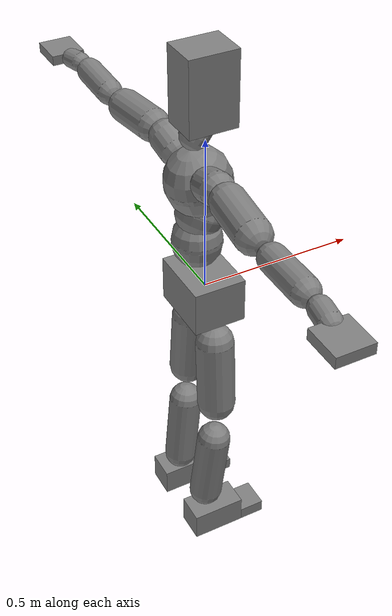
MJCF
<mujoco model="smpl">
  <compiler angle="radian" />
  <default>
    <motor ctrlrange="-1 1" ctrllimited="true" />
    <geom condim="1" friction="1.0 0.05 0.05" solimp=".9 .99 .003" solref=".015 1" />
    <joint limited="true" solimplimit="0 .99 .01" />
    <site size=".04" group="3" />
    <default class="force-torque">
      <site type="box" size=".01 .01 .02" rgba="1 0 0 1" />
    </default>
    <default class="touch">
      <site type="capsule" rgba="0 0 1 .3" />
    </default>
  </default>
  <worldbody>
    <body name="Pelvis" pos="0 0 0">
      <freejoint name="Pelvis" />
      <body name="L_Hip" pos="-0.0068 0.0695 -0.0914">
        <joint name="L_Hip_x" type="hinge" pos="0 0 0" axis="1 0 0" actuatorfrcrange="-300 300" stiffness="500" damping="50" armature="0.02" range="-0.5236 1.5708" />
        <joint name="L_Hip_y" type="hinge" pos="0 0 0" axis="0 1 0" actuatorfrcrange="-300 300" stiffness="500" damping="50" armature="0.02" range="-2.4435 1.0472" />
        <joint name="L_Hip_z" type="hinge" pos="0 0 0" axis="0 0 1" actuatorfrcrange="-300 300" stiffness="500" damping="50" armature="0.02" range="-0.6109 1.0472" />
        <body name="L_Knee" pos="-0.0045 0.0343 -0.3752">
          <joint name="L_Knee_x" type="hinge" pos="0 0 0" axis="1 0 0" actuatorfrcrange="-200 200" stiffness="500" damping="50" armature="0.02" range="-0.5236 0.5236" />
          <joint name="L_Knee_y" type="hinge" pos="0 0 0" axis="0 1 0" actuatorfrcrange="-200 200" stiffness="500" damping="50" armature="0.02" range="0 2.7925" />
          <joint name="L_Knee_z" type="hinge" pos="0 0 0" axis="0 0 1" actuatorfrcrange="-200 200" stiffness="500" damping="50" armature="0.02" range="-0.5236 0.5236" />
          <body name="L_Ankle" pos="-0.0437 -0.0136 -0.398">
            <joint name="L_Ankle_x" type="hinge" pos="0 0 0" axis="1 0 0" actuatorfrcrange="-100 100" stiffness="400" damping="40" armature="0.02" range="-0.5236 0.5236" />
            <joint name="L_Ankle_y" type="hinge" pos="0 0 0" axis="0 1 0" actuatorfrcrange="-100 100" stiffness="400" damping="40" armature="0.02" range="-0.9599 0.9599" />
            <joint name="L_Ankle_z" type="hinge" pos="0 0 0" axis="0 0 1" actuatorfrcrange="-100 100" stiffness="400" damping="40" armature="0.02" range="-0.6981 0.6981" />
            <body name="L_Toe" pos="0.1193 0.0124 -0.0258">
              <joint name="L_Toe_x" type="hinge" pos="0 0 0" axis="1 0 0" actuatorfrcrange="-75 75" stiffness="200" damping="20" armature="0.02" range="-0.5236 0.5236" />
              <joint name="L_Toe_y" type="hinge" pos="0 0 0" axis="0 1 0" actuatorfrcrange="-75 75" stiffness="200" damping="20" armature="0.02" range="-1.0472 1.0472" />
              <joint name="L_Toe_z" type="hinge" pos="0 0 0" axis="0 0 1" actuatorfrcrange="-75 75" stiffness="200" damping="20" armature="0.02" range="-0.5236 0.5236" />
              <geom type="box" pos="0.024800 0.011000 -0.024500" quat="0.500000 0.500000 0.500000 0.500000" size="0.0478 0.02 0.0496" density="427.056620" />
            </body>
            <geom type="box" pos="0.024200 0.023300 -0.023900" quat="0.500000 0.500000 0.500000 0.500000" size="0.0483 0.0464 0.085" density="472.452849" />
          </body>
          <geom type="capsule" contype="1" conaffinity="1" fromto="-0.008700 -0.002700 -0.079600 -0.035000 -0.010900 -0.318400" size="0.0541" density="1268.000559" />
        </body>
        <geom type="capsule" contype="1" conaffinity="1" fromto="-0.000900 0.006900 -0.075000 -0.003600 0.027400 -0.300200" size="0.0615" density="1473.714808" />
      </body>
      <body name="R_Hip" pos="-0.0043 -0.0677 -0.0905">
        <joint name="R_Hip_x" type="hinge" pos="0 0 0" axis="1 0 0" actuatorfrcrange="-300 300" stiffness="500" damping="50" armature="0.02" range="-1.5708 0.5236" />
        <joint name="R_Hip_y" type="hinge" pos="0 0 0" axis="0 1 0" actuatorfrcrange="-300 300" stiffness="500" damping="50" armature="0.02" range="-2.4435 1.0472" />
        <joint name="R_Hip_z" type="hinge" pos="0 0 0" axis="0 0 1" actuatorfrcrange="-300 300" stiffness="500" damping="50" armature="0.02" range="-1.0472 0.6109" />
        <body name="R_Knee" pos="-0.0089 -0.0383 -0.3826">
          <joint name="R_Knee_x" type="hinge" pos="0 0 0" axis="1 0 0" actuatorfrcrange="-200 200" stiffness="500" damping="50" armature="0.02" range="-0.5236 0.5236" />
          <joint name="R_Knee_y" type="hinge" pos="0 0 0" axis="0 1 0" actuatorfrcrange="-200 200" stiffness="500" damping="50" armature="0.02" range="0 2.7925" />
          <joint name="R_Knee_z" type="hinge" pos="0 0 0" axis="0 0 1" actuatorfrcrange="-200 200" stiffness="500" damping="50" armature="0.02" range="-0.5236 0.5236" />
          <body name="R_Ankle" pos="-0.0423 0.0158 -0.3984">
            <joint name="R_Ankle_x" type="hinge" pos="0 0 0" axis="1 0 0" actuatorfrcrange="-100 100" stiffness="400" damping="40" armature="0.02" range="-0.5236 0.5236" />
            <joint name="R_Ankle_y" type="hinge" pos="0 0 0" axis="0 1 0" actuatorfrcrange="-100 100" stiffness="400" damping="40" armature="0.02" range="-0.9599 0.9599" />
            <joint name="R_Ankle_z" type="hinge" pos="0 0 0" axis="0 0 1" actuatorfrcrange="-100 100" stiffness="400" damping="40" armature="0.02" range="-0.6981 0.6981" />
            <body name="R_Toe" pos="0.1193 -0.0124 -0.0258">
              <joint name="R_Toe_x" type="hinge" pos="0 0 0" axis="1 0 0" actuatorfrcrange="-75 75" stiffness="200" damping="20" armature="0.02" range="-0.5236 0.5236" />
              <joint name="R_Toe_y" type="hinge" pos="0 0 0" axis="0 1 0" actuatorfrcrange="-75 75" stiffness="200" damping="20" armature="0.02" range="-1.0472 1.0472" />
              <joint name="R_Toe_z" type="hinge" pos="0 0 0" axis="0 0 1" actuatorfrcrange="-75 75" stiffness="200" damping="20" armature="0.02" range="-0.5236 0.5236" />
              <geom type="box" pos="0.026700 -0.008800 -0.017800" quat="0.500000 0.500000 0.500000 0.500000" size="0.0479 0.0216 0.0493" density="396.998480" />
            </body>
            <geom type="box" pos="0.025600 -0.021200 -0.017400" quat="0.500000 0.500000 0.500000 0.500000" size="0.0483 0.0478 0.0865" density="450.662451" />
          </body>
          <geom type="capsule" contype="1" conaffinity="1" fromto="-0.008500 0.003200 -0.079700 -0.033800 0.012600 -0.318700" size="0.0541" density="1268.302767" />
        </body>
        <geom type="capsule" contype="1" conaffinity="1" fromto="-0.001800 -0.007700 -0.076500 -0.007100 -0.030600 -0.306100" size="0.0606" density="1526.123944" />
      </body>
      <body name="Torso" pos="-0.0267 -0.0025 0.109">
        <joint name="Torso_x" type="hinge" pos="0 0 0" axis="1 0 0" actuatorfrcrange="-300 300" stiffness="1000" damping="100" armature="0.02" range="-1.0472 1.0472" />
        <joint name="Torso_y" type="hinge" pos="0 0 0" axis="0 1 0" actuatorfrcrange="-300 300" stiffness="1000" damping="100" armature="0.02" range="-1.0472 1.5708" />
        <joint name="Torso_z" type="hinge" pos="0 0 0" axis="0 0 1" actuatorfrcrange="-300 300" stiffness="1000" damping="100" armature="0.02" range="-0.8727 0.8727" />
        <body name="Spine" pos="0.0011 0.0055 0.1352">
          <joint name="Spine_x" type="hinge" pos="0 0 0" axis="1 0 0" actuatorfrcrange="-200 200" stiffness="1000" damping="100" armature="0.02" range="-1.0472 1.0472" />
          <joint name="Spine_y" type="hinge" pos="0 0 0" axis="0 1 0" actuatorfrcrange="-200 200" stiffness="1000" damping="100" armature="0.02" range="-1.0472 1.5708" />
          <joint name="Spine_z" type="hinge" pos="0 0 0" axis="0 0 1" actuatorfrcrange="-200 200" stiffness="1000" damping="100" armature="0.02" range="-0.8727 0.8727" />
          <body name="Chest" pos="0.0254 0.0015 0.0529">
            <joint name="Chest_x" type="hinge" pos="0 0 0" axis="1 0 0" actuatorfrcrange="-150 150" stiffness="1000" damping="100" armature="0.02" range="-1.0472 1.0472" />
            <joint name="Chest_y" type="hinge" pos="0 0 0" axis="0 1 0" actuatorfrcrange="-150 150" stiffness="1000" damping="100" armature="0.02" range="-1.0472 1.5708" />
            <joint name="Chest_z" type="hinge" pos="0 0 0" axis="0 0 1" actuatorfrcrange="-150 150" stiffness="1000" damping="100" armature="0.02" range="-0.8727 0.8727" />
            <body name="Neck" pos="-0.0429 -0.0028 0.2139">
              <joint name="Neck_x" type="hinge" pos="0 0 0" axis="1 0 0" actuatorfrcrange="-75 75" stiffness="500" damping="50" armature="0.02" range="-0.8727 0.8727" />
              <joint name="Neck_y" type="hinge" pos="0 0 0" axis="0 1 0" actuatorfrcrange="-75 75" stiffness="500" damping="50" armature="0.02" range="-0.6981 1.0472" />
              <joint name="Neck_z" type="hinge" pos="0 0 0" axis="0 0 1" actuatorfrcrange="-75 75" stiffness="500" damping="50" armature="0.02" range="-0.7854 0.7854" />
              <body name="Head" pos="0.0513 0.0052 0.065">
                <joint name="Head_x" type="hinge" pos="0 0 0" axis="1 0 0" actuatorfrcrange="-25 25" stiffness="200" damping="20" armature="0.02" range="-0.8727 0.8727" />
                <joint name="Head_y" type="hinge" pos="0 0 0" axis="0 1 0" actuatorfrcrange="-25 25" stiffness="200" damping="20" armature="0.02" range="-0.6981 1.0472" />
                <joint name="Head_z" type="hinge" pos="0 0 0" axis="0 0 1" actuatorfrcrange="-25 25" stiffness="200" damping="20" armature="0.02" range="-0.7854 0.7854" />
                <geom type="box" pos="-0.011600 -0.004200 0.087600" quat="0.500000 0.500000 0.500000 0.500000" size="0.0606 0.1154 0.076" density="844.651218" />
              </body>
              <geom type="capsule" contype="1" conaffinity="1" fromto="0.010300 0.001000 0.013000 0.041100 0.004100 0.052000" size="0.0436" density="592.215307" />
            </body>
            <body name="L_Thorax" pos="-0.0341 0.0788 0.1217">
              <joint name="L_Thorax_x" type="hinge" pos="0 0 0" axis="1 0 0" actuatorfrcrange="-200 200" stiffness="500" damping="50" armature="0.02" range="-0.6981 0.5236" />
              <joint name="L_Thorax_y" type="hinge" pos="0 0 0" axis="0 1 0" actuatorfrcrange="-200 200" stiffness="500" damping="50" armature="0.02" range="-0.5236 0.5236" />
              <joint name="L_Thorax_z" type="hinge" pos="0 0 0" axis="0 0 1" actuatorfrcrange="-200 200" stiffness="500" damping="50" armature="0.02" range="-0.5236 0.5236" />
              <body name="L_Shoulder" pos="-0.0089 0.091 0.0305">
                <joint name="L_Shoulder_x" type="hinge" pos="0 0 0" axis="1 0 0" actuatorfrcrange="-150 150" stiffness="400" damping="40" armature="0.02" range="-2.3562 1.5708" />
                <joint name="L_Shoulder_y" type="hinge" pos="0 0 0" axis="0 1 0" actuatorfrcrange="-150 150" stiffness="400" damping="40" armature="0.02" range="-1.5708 1.5708" />
                <joint name="L_Shoulder_z" type="hinge" pos="0 0 0" axis="0 0 1" actuatorfrcrange="-150 150" stiffness="400" damping="40" armature="0.02" range="-2.7925 1.0472" />
                <body name="L_Elbow" pos="-0.0275 0.2596 -0.0128">
                  <joint name="L_Elbow_x" type="hinge" pos="0 0 0" axis="1 0 0" actuatorfrcrange="-100 100" stiffness="300" damping="30" armature="0.02" range="-0.5236 0.5236" />
                  <joint name="L_Elbow_y" type="hinge" pos="0 0 0" axis="0 1 0" actuatorfrcrange="-100 100" stiffness="300" damping="30" armature="0.02" range="-0.5236 0.5236" />
                  <joint name="L_Elbow_z" type="hinge" pos="0 0 0" axis="0 0 1" actuatorfrcrange="-100 100" stiffness="300" damping="30" armature="0.02" range="-2.7925 0" />
                  <body name="L_Wrist" pos="-0.0012 0.2492 0.009">
                    <joint name="L_Wrist_x" type="hinge" pos="0 0 0" axis="1 0 0" actuatorfrcrange="-75 75" stiffness="200" damping="20" armature="0.02" range="-1.5708 1.5708" />
                    <joint name="L_Wrist_y" type="hinge" pos="0 0 0" axis="0 1 0" actuatorfrcrange="-75 75" stiffness="200" damping="20" armature="0.02" range="-1.5708 1.5708" />
                    <joint name="L_Wrist_z" type="hinge" pos="0 0 0" axis="0 0 1" actuatorfrcrange="-75 75" stiffness="200" damping="20" armature="0.02" range="-1.0472 1.0472" />
                    <body name="L_Hand" pos="-0.0149 0.084 -0.0082">
                      <joint name="L_Hand_x" type="hinge" pos="0 0 0" axis="1 0 0" actuatorfrcrange="-50 50" stiffness="100" damping="10" armature="0.02" range="-1.5708 1.5708" />
                      <joint name="L_Hand_y" type="hinge" pos="0 0 0" axis="0 1 0" actuatorfrcrange="-50 50" stiffness="100" damping="10" armature="0.02" range="-1.5708 1.5708" />
                      <joint name="L_Hand_z" type="hinge" pos="0 0 0" axis="0 0 1" actuatorfrcrange="-50 50" stiffness="100" damping="10" armature="0.02" range="-1.5708 1.5708" />
                      <geom type="box" pos="-0.005800 0.049300 0.001000" quat="0.500000 0.500000 0.500000 0.500000" size="0.0585 0.0158 0.0538" density="402.988911" />
                    </body>
                    <geom type="capsule" contype="1" conaffinity="1" fromto="-0.003000 0.016800 -0.001600 -0.012000 0.067200 -0.006500" size="0.0318" density="1000.000000" />
                  </body>
                  <geom type="capsule" contype="1" conaffinity="1" fromto="-0.000200 0.049800 0.001800 -0.000900 0.199400 0.007200" size="0.0405" density="1031.783513" />
                </body>
                <geom type="capsule" contype="1" conaffinity="1" fromto="-0.005500 0.051900 -0.002600 -0.022000 0.207700 -0.010200" size="0.0517" density="771.361098" />
              </body>
              <geom type="capsule" contype="1" conaffinity="1" fromto="-0.001800 0.018200 0.006100 -0.007100 0.072800 0.024400" size="0.0521" density="642.006329" />
            </body>
            <body name="R_Thorax" pos="-0.0386 -0.0818 0.1188">
              <joint name="R_Thorax_x" type="hinge" pos="0 0 0" axis="1 0 0" actuatorfrcrange="-200 200" stiffness="500" damping="50" armature="0.02" range="-0.5236 0.6981" />
              <joint name="R_Thorax_y" type="hinge" pos="0 0 0" axis="0 1 0" actuatorfrcrange="-200 200" stiffness="500" damping="50" armature="0.02" range="-0.5236 0.5236" />
              <joint name="R_Thorax_z" type="hinge" pos="0 0 0" axis="0 0 1" actuatorfrcrange="-200 200" stiffness="500" damping="50" armature="0.02" range="-0.5236 0.5236" />
              <body name="R_Shoulder" pos="-0.0091 -0.096 0.0326">
                <joint name="R_Shoulder_x" type="hinge" pos="0 0 0" axis="1 0 0" actuatorfrcrange="-150 150" stiffness="400" damping="40" armature="0.02" range="-1.5708 2.3562" />
                <joint name="R_Shoulder_y" type="hinge" pos="0 0 0" axis="0 1 0" actuatorfrcrange="-150 150" stiffness="400" damping="40" armature="0.02" range="-1.5708 1.5708" />
                <joint name="R_Shoulder_z" type="hinge" pos="0 0 0" axis="0 0 1" actuatorfrcrange="-150 150" stiffness="400" damping="40" armature="0.02" range="-1.0472 2.7925" />
                <body name="R_Elbow" pos="-0.0214 -0.2537 -0.0133">
                  <joint name="R_Elbow_x" type="hinge" pos="0 0 0" axis="1 0 0" actuatorfrcrange="-100 100" stiffness="300" damping="30" armature="0.02" range="-0.5236 0.5236" />
                  <joint name="R_Elbow_y" type="hinge" pos="0 0 0" axis="0 1 0" actuatorfrcrange="-100 100" stiffness="300" damping="30" armature="0.02" range="-0.5236 0.5236" />
                  <joint name="R_Elbow_z" type="hinge" pos="0 0 0" axis="0 0 1" actuatorfrcrange="-100 100" stiffness="300" damping="30" armature="0.02" range="0 2.7925" />
                  <body name="R_Wrist" pos="-0.0056 -0.2553 0.0078">
                    <joint name="R_Wrist_x" type="hinge" pos="0 0 0" axis="1 0 0" actuatorfrcrange="-75 75" stiffness="200" damping="20" armature="0.02" range="-1.5708 1.5708" />
                    <joint name="R_Wrist_y" type="hinge" pos="0 0 0" axis="0 1 0" actuatorfrcrange="-75 75" stiffness="200" damping="20" armature="0.02" range="-1.5708 1.5708" />
                    <joint name="R_Wrist_z" type="hinge" pos="0 0 0" axis="0 0 1" actuatorfrcrange="-75 75" stiffness="200" damping="20" armature="0.02" range="-1.0472 1.0472" />
                    <body name="R_Hand" pos="-0.0103 -0.0846 -0.0061">
                      <joint name="R_Hand_x" type="hinge" pos="0 0 0" axis="1 0 0" actuatorfrcrange="-50 50" stiffness="100" damping="10" armature="0.02" range="-1.5708 1.5708" />
                      <joint name="R_Hand_y" type="hinge" pos="0 0 0" axis="0 1 0" actuatorfrcrange="-50 50" stiffness="100" damping="10" armature="0.02" range="-1.5708 1.5708" />
                      <joint name="R_Hand_z" type="hinge" pos="0 0 0" axis="0 0 1" actuatorfrcrange="-50 50" stiffness="100" damping="10" armature="0.02" range="-1.5708 1.5708" />
                      <geom type="box" pos="-0.007900 -0.046200 -0.000900" quat="0.500000 0.500000 0.500000 0.500000" size="0.0569 0.0164 0.0546" density="403.911870" />
                    </body>
                    <geom type="capsule" contype="1" conaffinity="1" fromto="-0.002100 -0.016900 -0.001200 -0.008300 -0.067700 -0.004900" size="0.0326" density="1000.000000" />
                  </body>
                  <geom type="capsule" contype="1" conaffinity="1" fromto="-0.001100 -0.051100 0.001600 -0.004400 -0.204200 0.006200" size="0.0408" density="1015.758936" />
                </body>
                <geom type="capsule" contype="1" conaffinity="1" fromto="-0.004300 -0.050700 -0.002700 -0.017100 -0.203000 -0.010700" size="0.0531" density="724.184440" />
              </body>
              <geom type="capsule" contype="1" conaffinity="1" fromto="-0.001800 -0.019200 0.006500 -0.007300 -0.076800 0.026000" size="0.0511" density="657.577057" />
            </body>
            <geom type="capsule" contype="1" conaffinity="1" fromto="-0.017300 -0.000900 0.068200 -0.021200 -0.001000 0.083300" size="0.1002" density="2369.488754" />
          </body>
          <geom type="capsule" contype="1" conaffinity="1" fromto="0.011400 0.000700 0.023800 0.014000 0.000800 0.029100" size="0.0755" density="1851.910422" />
        </body>
        <geom type="capsule" contype="1" conaffinity="1" fromto="0.000500 0.002500 0.060800 0.000600 0.003000 0.074300" size="0.0769" density="1332.880997" />
      </body>
      <geom type="box" pos="-0.005500 0.000000 -0.012100" quat="0.500000 0.500000 0.500000 0.500000" size="0.1069 0.0722 0.083" density="1191.689605" />
    </body>
  </worldbody>
  <actuator>
    <motor name="L_Hip_x" joint="L_Hip_x" gear="300" />
    <motor name="L_Hip_y" joint="L_Hip_y" gear="300" />
    <motor name="L_Hip_z" joint="L_Hip_z" gear="300" />
    <motor name="L_Knee_x" joint="L_Knee_x" gear="200" />
    <motor name="L_Knee_y" joint="L_Knee_y" gear="200" />
    <motor name="L_Knee_z" joint="L_Knee_z" gear="200" />
    <motor name="L_Ankle_x" joint="L_Ankle_x" gear="100" />
    <motor name="L_Ankle_y" joint="L_Ankle_y" gear="100" />
    <motor name="L_Ankle_z" joint="L_Ankle_z" gear="100" />
    <motor name="L_Toe_x" joint="L_Toe_x" gear="75" />
    <motor name="L_Toe_y" joint="L_Toe_y" gear="75" />
    <motor name="L_Toe_z" joint="L_Toe_z" gear="75" />
    <motor name="R_Hip_x" joint="R_Hip_x" gear="300" />
    <motor name="R_Hip_y" joint="R_Hip_y" gear="300" />
    <motor name="R_Hip_z" joint="R_Hip_z" gear="300" />
    <motor name="R_Knee_x" joint="R_Knee_x" gear="200" />
    <motor name="R_Knee_y" joint="R_Knee_y" gear="200" />
    <motor name="R_Knee_z" joint="R_Knee_z" gear="200" />
    <motor name="R_Ankle_x" joint="R_Ankle_x" gear="100" />
    <motor name="R_Ankle_y" joint="R_Ankle_y" gear="100" />
    <motor name="R_Ankle_z" joint="R_Ankle_z" gear="100" />
    <motor name="R_Toe_x" joint="R_Toe_x" gear="75" />
    <motor name="R_Toe_y" joint="R_Toe_y" gear="75" />
    <motor name="R_Toe_z" joint="R_Toe_z" gear="75" />
    <motor name="Torso_x" joint="Torso_x" gear="300" />
    <motor name="Torso_y" joint="Torso_y" gear="300" />
    <motor name="Torso_z" joint="Torso_z" gear="300" />
    <motor name="Spine_x" joint="Spine_x" gear="200" />
    <motor name="Spine_y" joint="Spine_y" gear="200" />
    <motor name="Spine_z" joint="Spine_z" gear="200" />
    <motor name="Chest_x" joint="Chest_x" gear="150" />
    <motor name="Chest_y" joint="Chest_y" gear="150" />
    <motor name="Chest_z" joint="Chest_z" gear="150" />
    <motor name="Neck_x" joint="Neck_x" gear="75" />
    <motor name="Neck_y" joint="Neck_y" gear="75" />
    <motor name="Neck_z" joint="Neck_z" gear="75" />
    <motor name="Head_x" joint="Head_x" gear="25" />
    <motor name="Head_y" joint="Head_y" gear="25" />
    <motor name="Head_z" joint="Head_z" gear="25" />
    <motor name="L_Thorax_x" joint="L_Thorax_x" gear="200" />
    <motor name="L_Thorax_y" joint="L_Thorax_y" gear="200" />
    <motor name="L_Thorax_z" joint="L_Thorax_z" gear="200" />
    <motor name="L_Shoulder_x" joint="L_Shoulder_x" gear="150" />
    <motor name="L_Shoulder_y" joint="L_Shoulder_y" gear="150" />
    <motor name="L_Shoulder_z" joint="L_Shoulder_z" gear="150" />
    <motor name="L_Elbow_x" joint="L_Elbow_x" gear="100" />
    <motor name="L_Elbow_y" joint="L_Elbow_y" gear="100" />
    <motor name="L_Elbow_z" joint="L_Elbow_z" gear="100" />
    <motor name="L_Wrist_x" joint="L_Wrist_x" gear="75" />
    <motor name="L_Wrist_y" joint="L_Wrist_y" gear="75" />
    <motor name="L_Wrist_z" joint="L_Wrist_z" gear="75" />
    <motor name="L_Hand_x" joint="L_Hand_x" gear="50" />
    <motor name="L_Hand_y" joint="L_Hand_y" gear="50" />
    <motor name="L_Hand_z" joint="L_Hand_z" gear="50" />
    <motor name="R_Thorax_x" joint="R_Thorax_x" gear="200" />
    <motor name="R_Thorax_y" joint="R_Thorax_y" gear="200" />
    <motor name="R_Thorax_z" joint="R_Thorax_z" gear="200" />
    <motor name="R_Shoulder_x" joint="R_Shoulder_x" gear="150" />
    <motor name="R_Shoulder_y" joint="R_Shoulder_y" gear="150" />
    <motor name="R_Shoulder_z" joint="R_Shoulder_z" gear="150" />
    <motor name="R_Elbow_x" joint="R_Elbow_x" gear="100" />
    <motor name="R_Elbow_y" joint="R_Elbow_y" gear="100" />
    <motor name="R_Elbow_z" joint="R_Elbow_z" gear="100" />
    <motor name="R_Wrist_x" joint="R_Wrist_x" gear="75" />
    <motor name="R_Wrist_y" joint="R_Wrist_y" gear="75" />
    <motor name="R_Wrist_z" joint="R_Wrist_z" gear="75" />
    <motor name="R_Hand_x" joint="R_Hand_x" gear="50" />
    <motor name="R_Hand_y" joint="R_Hand_y" gear="50" />
    <motor name="R_Hand_z" joint="R_Hand_z" gear="50" />
  </actuator>
</mujoco>
